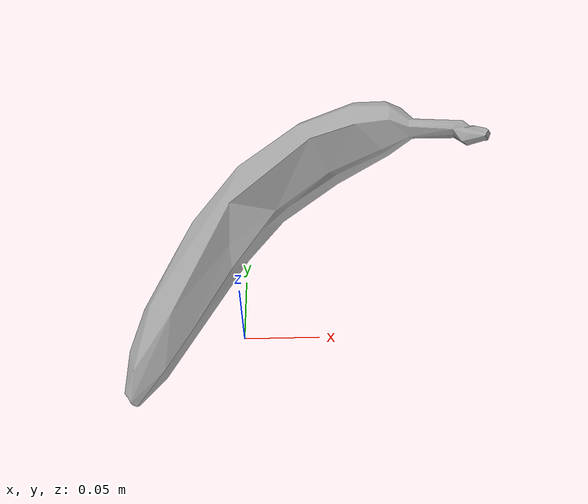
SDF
<?xml version="1.0" ?>
<sdf version="1.5">
	<model name="OBJECT">
		<link name="Obj_3">
			<pose>0 0 0.1 2.2 -0.296705961227417 0.01745329052209854</pose>
			<inertial>
				<mass>0.8622732758522034</mass>
				<pose>0.03477764129638672 0.0029336530715227127 0.01468808762729168 2.1619239021219983e-07 1.229939812219527e-07 -1.3813895805014909e-07</pose>
				<inertia>
					<ixx>0.010104811936616898</ixx>
					<ixy>0.0</ixy>
					<ixz>0.0</ixz>
					<iyy>0.02979417145252228</iyy>
					<iyz>0.0</iyz>
					<izz>0.022718265652656555</izz>
				</inertia>
			</inertial>
			<collision name="VIS_Obj_3_Banana_Coll">
				<pose>-0.18325240910053253 -0.042692720890045166 -0.0038590345066040754 3.054346677799913e-07 5.162897664945376e-08 -1.8141007274152798e-07</pose>
				<geometry>
					<mesh>
						<uri>model://banana/meshes/collisions/COL_Obj_3_Banana_Coll.dae</uri>
						<scale>0.11999999731779099 0.11999999731779099 0.11999999731779099</scale>
					</mesh>
				</geometry>
			</collision>
			<visual name="VIS_Obj_3_Banana">
				<pose>-0.18325240910053253 -0.042692720890045166 -0.0038590345066040754 3.054346677799913e-07 5.162897664945376e-08 -1.8141007274152798e-07</pose>
				<geometry>
					<mesh>
						<uri>model://banana/meshes/visual/VIS_Obj_3_Banana.dae</uri>
						<scale>0.11999999731779099 0.11999999731779099 0.11999999731779099</scale>
					</mesh>
				</geometry>
			</visual>
		</link>
	</model>
</sdf>
